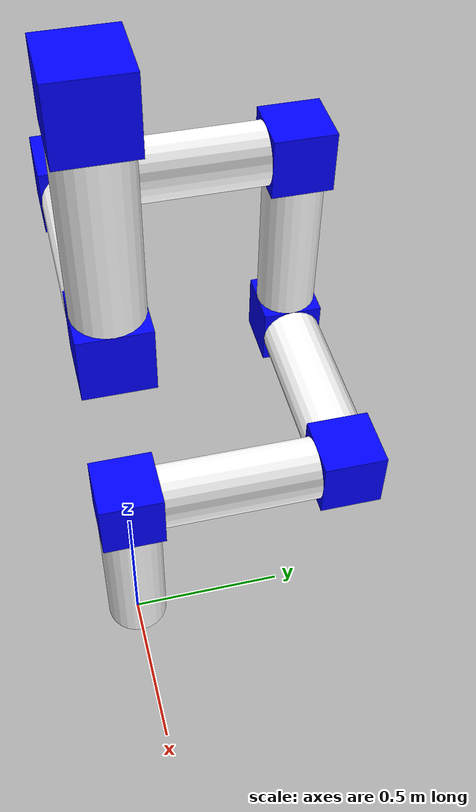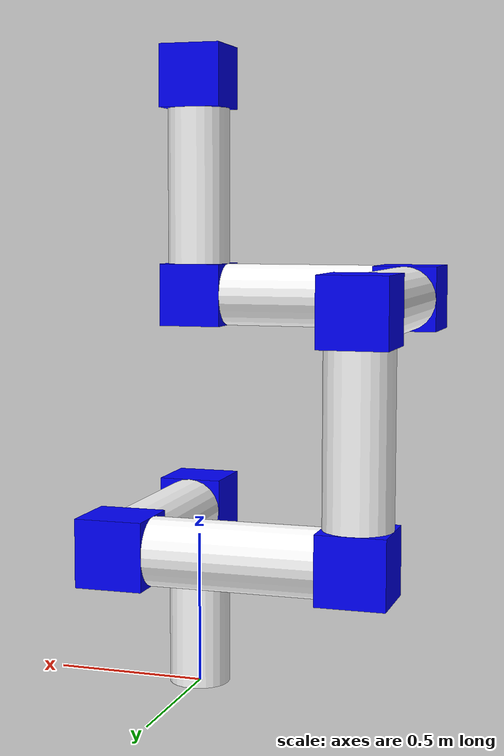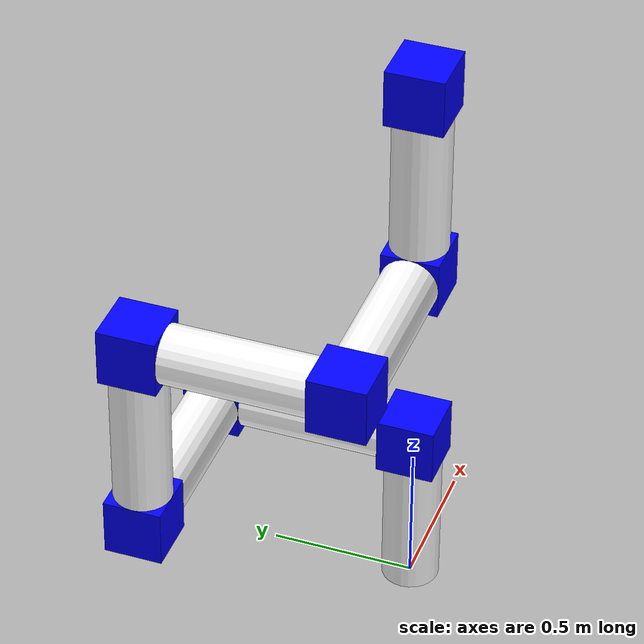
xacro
<?xml version="1.0"?>
<robot name="unibot" xmlns:xacro="http://www.ros.org/wiki/xacro">

  <!-- Includes -->
  <xacro:include filename="$(find xacro_tutorial)/model/xacro/links.xacro"/>
  <xacro:include filename="$(find xacro_tutorial)/model/xacro/union.xacro"/>

  <!-- Links -->
  <xacro:unit link="a1"/>
  <xacro:unit link="a2"/>
  <xacro:unit link="a3"/>
  <xacro:unit link="a4"/>
  <xacro:unit link="a5"/>
  <xacro:unit link="a6"/>
  <xacro:unit link="a7"/>
  <xacro:pin root_link="a1"/>

  <!-- Joints -->
  <xacro:union parent="a1" child="a2" y=" 1"/>
  <xacro:union parent="a2" child="a3" x="-1"/>
  <xacro:union parent="a3" child="a4" y="-1"/>
  <xacro:union parent="a4" child="a5" x="-1"/>
  <xacro:union parent="a5" child="a6" y="-1"/>
  <xacro:union parent="a6" child="a7" x=" 1"/>

</robot>

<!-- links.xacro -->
<robot xmlns:xacro="http://www.ros.org/wiki/xacro">
    <xacro:include filename="$(find xacro_tutorial)/model/xacro/properties.xacro"/>

    <xacro:macro name="unit" params="link">

        <!-- Geometry Macros-->
        <xacro:macro name="tail_geom">
            <origin xyz="0.0 0.0 ${heigth/2}" rpy="0.0 0.0 0.0"/>
            <geometry>
                <cylinder radius="${width/2}" length="${heigth}"/>
            </geometry>
        </xacro:macro>

        <xacro:macro name="head_geom">
            <origin xyz="0.0 0.0 ${width/2}" rpy="0.0 0.0 0.0"/>
            <geometry>
                <box size="${width} ${width} ${width}"/>
            </geometry>
        </xacro:macro>

        <!-- Tail Link -->
        <link name="${link}_tail">
            <inertial>
                <origin xyz="0.0 0.0 ${heigth/2}" rpy="0.0 0.0 0.0"/>
                <mass value="1.0"/>
                <inertia ixx="1.0" ixy="0.0" ixz="0.0"
                        iyy="1.0" iyz="0.0"
                        izz="1.0"/>
            </inertial>
            <visual>
                <xacro:tail_geom/>
                <material name="White">
                    <color rgba="1.0 1.0 1.0 1.0"/>
                </material>
            </visual>
            <collision>
                <xacro:tail_geom/>
            </collision>
        </link>
        <gazebo reference="${link}_tail">
            <selfCollide>true</selfCollide>
            <material>Gazebo/White</material>
        </gazebo>

        <!-- Head Link -->
        <link name="${link}_head">
            <inertial>
                <origin xyz="0.0 0.0 0.0" rpy="0.0 0.0 0.0"/>
                <mass value="1.0"/>
                <inertia ixx="1.0" ixy="0.0" ixz="0.0"
                        iyy="1.0" iyz="0.0"
                        izz="1.0"/>
            </inertial>
            <visual>
                <xacro:head_geom/>
                <material name="Blue">
                    <color rgba="0.0 0.0 1.0 1.0"/>
                </material>
            </visual>
            <collision>
                <xacro:head_geom/>
            </collision>
        </link>
        <gazebo reference="${link}_head">
            <selfCollide>true</selfCollide>
            <material>Gazebo/Blue</material>
        </gazebo>

        <!-- Joint -->
        <joint name="${link}_joint" type="revolute">
            <origin xyz="0.0 0.0 ${heigth}" rpy="0.0 0.0 0.0"/>
            <parent link="${link}_tail"/>
            <child link="${link}_head"/>
            <axis xyz="0.0 0.0 1.0"/>
            <limit lower="${-2*pi}" upper="${2*pi}" effort="1000000" velocity="1000000"/>
        </joint>
    </xacro:macro>

    <!-- Base Link Macro -->
    <xacro:macro name="pin" params="root_link">
        <link name="world"/>
        <gazebo reference="world">
            <static>true</static>
        </gazebo>

        <joint name="pin" type="fixed">
            <parent link="world"/>
            <child link="${root_link}_tail"/>
        </joint>
    </xacro:macro>
</robot>

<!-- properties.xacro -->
<robot xmlns:xacro="http://www.ros.org/wiki/xacro">

    <xacro:property name="width" value="0.2"/>
    <xacro:property name="heigth" value="0.5"/>

</robot>

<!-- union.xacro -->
<robot xmlns:xacro="http://www.ros.org/wiki/xacro">
    <xacro:macro name="union" params="parent child x=0 y=0 z=0">

        <xacro:include filename="$(find ros2_control_tutorial)/model/xacro/properties.xacro"/>

        <joint name="${parent}_${child}_joint" type="fixed">
            <origin xyz="${x*width/2} ${y*width/2} ${z*width/2+width/2}"
                    rpy="${-y*pi/2} ${x*pi/2} 0"/>
            <parent link="${parent}_head"/>
            <child link="${child}_tail"/>
        </joint>
    </xacro:macro>
</robot>
